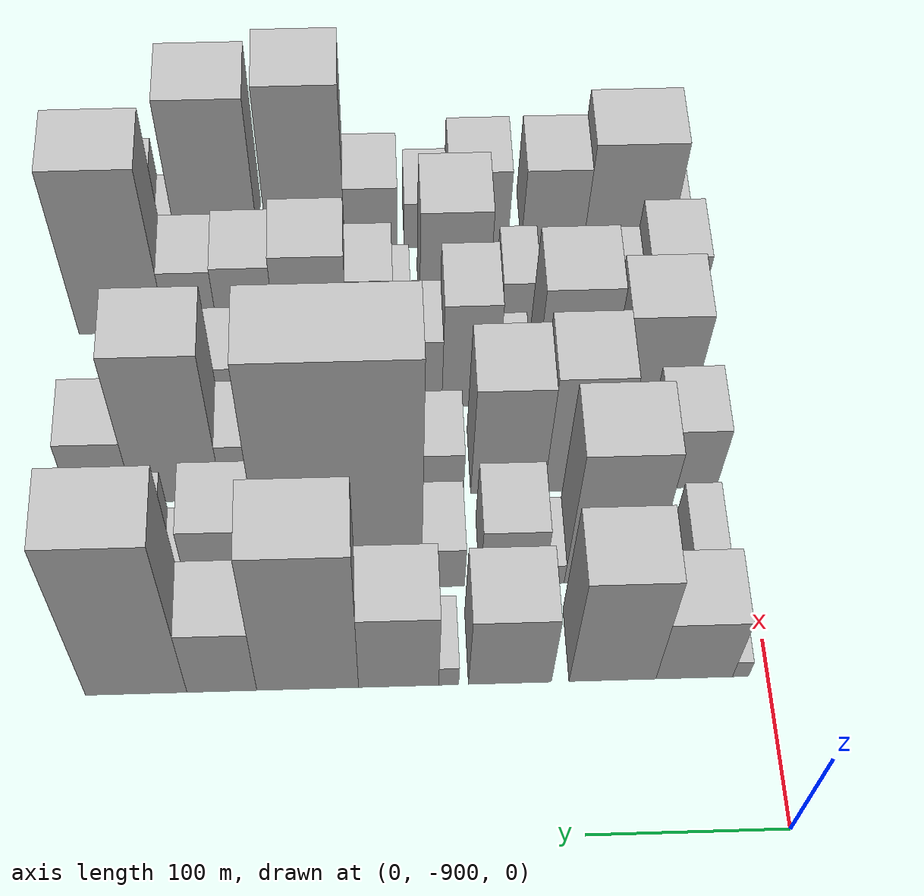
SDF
<sdf version="1.6">
 <world name="default">
  <model name="building_1">
   <static>1</static>
   <pose>100.0000 -885.8886 0 0.000000 0.000000 0.000000</pose>
   <link name="link">
    <pose>0 0 9.00 0 0 0</pose>
    <collision name="collision"><geometry><box><size>40.0000 8.2228 18.0000</size></box></geometry></collision>
    <visual name="visual">
     <cast_shadows>0</cast_shadows>
     <geometry><box><size>40.0000 8.2228 18.0000</size></box></geometry>
     <material>
      <script>
       <uri>model://HANNAS_wall/materials/scripts</uri>
       <uri>model://HANNAS_wall/materials/textures</uri>
       <name>vrc/HANNAS_wall</name>
      </script>
     </material>
    </visual>
   </link>
  </model>
  <model name="building_2">
   <static>1</static>
   <pose>100.0000 -862.1573 0 0.000000 0.000000 0.000000</pose>
   <link name="link">
    <pose>0 0 33.00 0 0 0</pose>
    <collision name="collision"><geometry><box><size>40.0000 39.2398 66.0000</size></box></geometry></collision>
    <visual name="visual">
     <cast_shadows>0</cast_shadows>
     <geometry><box><size>40.0000 39.2398 66.0000</size></box></geometry>
     <material>
      <script>
       <uri>model://HANNAS_wall/materials/scripts</uri>
       <uri>model://HANNAS_wall/materials/textures</uri>
       <name>vrc/HANNAS_wall</name>
      </script>
     </material>
    </visual>
   </link>
  </model>
  <model name="building_3">
   <static>1</static>
   <pose>100.0000 -820.3483 0 0.000000 0.000000 0.000000</pose>
   <link name="link">
    <pose>0 0 57.00 0 0 0</pose>
    <collision name="collision"><geometry><box><size>40.0000 44.3781 114.0000</size></box></geometry></collision>
    <visual name="visual">
     <cast_shadows>0</cast_shadows>
     <geometry><box><size>40.0000 44.3781 114.0000</size></box></geometry>
     <material>
      <script>
       <uri>model://HANNAS_wall/materials/scripts</uri>
       <uri>model://HANNAS_wall/materials/textures</uri>
       <name>vrc/HANNAS_wall</name>
      </script>
     </material>
    </visual>
   </link>
  </model>
  <model name="building_4">
   <static>1</static>
   <pose>100.0000 -768.0062 0 0.000000 0.000000 0.000000</pose>
   <link name="link">
    <pose>0 0 37.50 0 0 0</pose>
    <collision name="collision"><geometry><box><size>40.0000 42.3063 75.0000</size></box></geometry></collision>
    <visual name="visual">
     <cast_shadows>0</cast_shadows>
     <geometry><box><size>40.0000 42.3063 75.0000</size></box></geometry>
     <material>
      <script>
       <uri>model://HANNAS_wall/materials/scripts</uri>
       <uri>model://HANNAS_wall/materials/textures</uri>
       <name>vrc/HANNAS_wall</name>
      </script>
     </material>
    </visual>
   </link>
  </model>
  <model name="building_5">
   <static>1</static>
   <pose>100.0000 -736.7441 0 0.000000 0.000000 0.000000</pose>
   <link name="link">
    <pose>0 0 10.50 0 0 0</pose>
    <collision name="collision"><geometry><box><size>40.0000 10.2178 21.0000</size></box></geometry></collision>
    <visual name="visual">
     <cast_shadows>0</cast_shadows>
     <geometry><box><size>40.0000 10.2178 21.0000</size></box></geometry>
     <material>
      <script>
       <uri>model://HANNAS_wall/materials/scripts</uri>
       <uri>model://HANNAS_wall/materials/textures</uri>
       <name>vrc/HANNAS_wall</name>
      </script>
     </material>
    </visual>
   </link>
  </model>
  <model name="building_6">
   <static>1</static>
   <pose>100.0000 -711.2774 0 0.000000 0.000000 0.000000</pose>
   <link name="link">
    <pose>0 0 40.50 0 0 0</pose>
    <collision name="collision"><geometry><box><size>40.0000 40.7158 81.0000</size></box></geometry></collision>
    <visual name="visual">
     <cast_shadows>0</cast_shadows>
     <geometry><box><size>40.0000 40.7158 81.0000</size></box></geometry>
     <material>
      <script>
       <uri>model://HANNAS_wall/materials/scripts</uri>
       <uri>model://HANNAS_wall/materials/textures</uri>
       <name>vrc/HANNAS_wall</name>
      </script>
     </material>
    </visual>
   </link>
  </model>
  <model name="building_7">
   <static>1</static>
   <pose>100.0000 -665.0568 0 0.000000 0.000000 0.000000</pose>
   <link name="link">
    <pose>0 0 75.00 0 0 0</pose>
    <collision name="collision"><geometry><box><size>40.0000 51.7253 150.0000</size></box></geometry></collision>
    <visual name="visual">
     <cast_shadows>0</cast_shadows>
     <geometry><box><size>40.0000 51.7253 150.0000</size></box></geometry>
     <material>
      <script>
       <uri>model://HANNAS_wall/materials/scripts</uri>
       <uri>model://HANNAS_wall/materials/textures</uri>
       <name>vrc/HANNAS_wall</name>
      </script>
     </material>
    </visual>
   </link>
  </model>
  <model name="building_8">
   <static>1</static>
   <pose>100.0000 -621.4893 0 0.000000 0.000000 0.000000</pose>
   <link name="link">
    <pose>0 0 34.50 0 0 0</pose>
    <collision name="collision"><geometry><box><size>40.0000 35.4097 69.0000</size></box></geometry></collision>
    <visual name="visual">
     <cast_shadows>0</cast_shadows>
     <geometry><box><size>40.0000 35.4097 69.0000</size></box></geometry>
     <material>
      <script>
       <uri>model://HANNAS_wall/materials/scripts</uri>
       <uri>model://HANNAS_wall/materials/textures</uri>
       <name>vrc/HANNAS_wall</name>
      </script>
     </material>
    </visual>
   </link>
  </model>
  <model name="building_9">
   <static>1</static>
   <pose>100.0000 -578.0950 0 0.000000 0.000000 0.000000</pose>
   <link name="link">
    <pose>0 0 82.50 0 0 0</pose>
    <collision name="collision"><geometry><box><size>40.0000 51.3789 165.0000</size></box></geometry></collision>
    <visual name="visual">
     <cast_shadows>0</cast_shadows>
     <geometry><box><size>40.0000 51.3789 165.0000</size></box></geometry>
     <material>
      <script>
       <uri>model://HANNAS_wall/materials/scripts</uri>
       <uri>model://HANNAS_wall/materials/textures</uri>
       <name>vrc/HANNAS_wall</name>
      </script>
     </material>
    </visual>
   </link>
  </model>
  <model name="building_50">
   <static>1</static>
   <pose>155.0000 -873.4948 0 0.000000 0.000000 0.000000</pose>
   <link name="link">
    <pose>0 0 16.50 0 0 0</pose>
    <collision name="collision"><geometry><box><size>40.0000 19.0104 33.0000</size></box></geometry></collision>
    <visual name="visual">
     <cast_shadows>0</cast_shadows>
     <geometry><box><size>40.0000 19.0104 33.0000</size></box></geometry>
     <material>
      <script>
       <uri>model://HANNAS_wall/materials/scripts</uri>
       <uri>model://HANNAS_wall/materials/textures</uri>
       <name>vrc/HANNAS_wall</name>
      </script>
     </material>
    </visual>
   </link>
  </model>
  <model name="building_51">
   <static>1</static>
   <pose>155.0000 -855.7284 0 0.000000 0.000000 0.000000</pose>
   <link name="link">
    <pose>0 0 7.50 0 0 0</pose>
    <collision name="collision"><geometry><box><size>40.0000 6.5225 15.0000</size></box></geometry></collision>
    <visual name="visual">
     <cast_shadows>0</cast_shadows>
     <geometry><box><size>40.0000 6.5225 15.0000</size></box></geometry>
     <material>
      <script>
       <uri>model://HANNAS_wall/materials/scripts</uri>
       <uri>model://HANNAS_wall/materials/textures</uri>
       <name>vrc/HANNAS_wall</name>
      </script>
     </material>
    </visual>
   </link>
  </model>
  <model name="building_52">
   <static>1</static>
   <pose>155.0000 -822.6581 0 0.000000 0.000000 0.000000</pose>
   <link name="link">
    <pose>0 0 67.50 0 0 0</pose>
    <collision name="collision"><geometry><box><size>40.0000 45.6182 135.0000</size></box></geometry></collision>
    <visual name="visual">
     <cast_shadows>0</cast_shadows>
     <geometry><box><size>40.0000 45.6182 135.0000</size></box></geometry>
     <material>
      <script>
       <uri>model://HANNAS_wall/materials/scripts</uri>
       <uri>model://HANNAS_wall/materials/textures</uri>
       <name>vrc/HANNAS_wall</name>
      </script>
     </material>
    </visual>
   </link>
  </model>
  <model name="building_53">
   <static>1</static>
   <pose>155.0000 -794.6449 0 0.000000 0.000000 0.000000</pose>
   <link name="link">
    <pose>0 0 10.50 0 0 0</pose>
    <collision name="collision"><geometry><box><size>40.0000 10.4082 21.0000</size></box></geometry></collision>
    <visual name="visual">
     <cast_shadows>0</cast_shadows>
     <geometry><box><size>40.0000 10.4082 21.0000</size></box></geometry>
     <material>
      <script>
       <uri>model://HANNAS_wall/materials/scripts</uri>
       <uri>model://HANNAS_wall/materials/textures</uri>
       <name>vrc/HANNAS_wall</name>
      </script>
     </material>
    </visual>
   </link>
  </model>
  <model name="building_54">
   <static>1</static>
   <pose>155.0000 -772.4539 0 0.000000 0.000000 0.000000</pose>
   <link name="link">
    <pose>0 0 30.00 0 0 0</pose>
    <collision name="collision"><geometry><box><size>40.0000 33.9737 60.0000</size></box></geometry></collision>
    <visual name="visual">
     <cast_shadows>0</cast_shadows>
     <geometry><box><size>40.0000 33.9737 60.0000</size></box></geometry>
     <material>
      <script>
       <uri>model://HANNAS_wall/materials/scripts</uri>
       <uri>model://HANNAS_wall/materials/textures</uri>
       <name>vrc/HANNAS_wall</name>
      </script>
     </material>
    </visual>
   </link>
  </model>
  <model name="building_55">
   <static>1</static>
   <pose>155.0000 -736.1409 0 0.000000 0.000000 0.000000</pose>
   <link name="link">
    <pose>0 0 21.00 0 0 0</pose>
    <collision name="collision"><geometry><box><size>40.0000 22.6525 42.0000</size></box></geometry></collision>
    <visual name="visual">
     <cast_shadows>0</cast_shadows>
     <geometry><box><size>40.0000 22.6525 42.0000</size></box></geometry>
     <material>
      <script>
       <uri>model://HANNAS_wall/materials/scripts</uri>
       <uri>model://HANNAS_wall/materials/textures</uri>
       <name>vrc/HANNAS_wall</name>
      </script>
     </material>
    </visual>
   </link>
  </model>
  <model name="building_56">
   <static>1</static>
   <pose>155.0000 -683.8032 0 0.000000 0.000000 0.000000</pose>
   <link name="link">
    <pose>0 0 111.00 0 0 0</pose>
    <collision name="collision"><geometry><box><size>40.0000 82.0228 222.0000</size></box></geometry></collision>
    <visual name="visual">
     <cast_shadows>0</cast_shadows>
     <geometry><box><size>40.0000 82.0228 222.0000</size></box></geometry>
     <material>
      <script>
       <uri>model://HANNAS_wall/materials/scripts</uri>
       <uri>model://HANNAS_wall/materials/textures</uri>
       <name>vrc/HANNAS_wall</name>
      </script>
     </material>
    </visual>
   </link>
  </model>
  <model name="building_57">
   <static>1</static>
   <pose>155.0000 -622.7262 0 0.000000 0.000000 0.000000</pose>
   <link name="link">
    <pose>0 0 34.50 0 0 0</pose>
    <collision name="collision"><geometry><box><size>40.0000 40.1311 69.0000</size></box></geometry></collision>
    <visual name="visual">
     <cast_shadows>0</cast_shadows>
     <geometry><box><size>40.0000 40.1311 69.0000</size></box></geometry>
     <material>
      <script>
       <uri>model://HANNAS_wall/materials/scripts</uri>
       <uri>model://HANNAS_wall/materials/textures</uri>
       <name>vrc/HANNAS_wall</name>
      </script>
     </material>
    </visual>
   </link>
  </model>
  <model name="building_58">
   <static>1</static>
   <pose>155.0000 -597.5790 0 0.000000 0.000000 0.000000</pose>
   <link name="link">
    <pose>0 0 10.50 0 0 0</pose>
    <collision name="collision"><geometry><box><size>40.0000 10.1633 21.0000</size></box></geometry></collision>
    <visual name="visual">
     <cast_shadows>0</cast_shadows>
     <geometry><box><size>40.0000 10.1633 21.0000</size></box></geometry>
     <material>
      <script>
       <uri>model://HANNAS_wall/materials/scripts</uri>
       <uri>model://HANNAS_wall/materials/textures</uri>
       <name>vrc/HANNAS_wall</name>
      </script>
     </material>
    </visual>
   </link>
  </model>
  <model name="building_59">
   <static>1</static>
   <pose>155.0000 -576.0918 0 0.000000 0.000000 0.000000</pose>
   <link name="link">
    <pose>0 0 30.00 0 0 0</pose>
    <collision name="collision"><geometry><box><size>40.0000 32.8111 60.0000</size></box></geometry></collision>
    <visual name="visual">
     <cast_shadows>0</cast_shadows>
     <geometry><box><size>40.0000 32.8111 60.0000</size></box></geometry>
     <material>
      <script>
       <uri>model://HANNAS_wall/materials/scripts</uri>
       <uri>model://HANNAS_wall/materials/textures</uri>
       <name>vrc/HANNAS_wall</name>
      </script>
     </material>
    </visual>
   </link>
  </model>
  <model name="building_100">
   <static>1</static>
   <pose>210.0000 -870.8653 0 0.000000 0.000000 0.000000</pose>
   <link name="link">
    <pose>0 0 30.00 0 0 0</pose>
    <collision name="collision"><geometry><box><size>40.0000 32.2693 60.0000</size></box></geometry></collision>
    <visual name="visual">
     <cast_shadows>0</cast_shadows>
     <geometry><box><size>40.0000 32.2693 60.0000</size></box></geometry>
     <material>
      <script>
       <uri>model://HANNAS_wall/materials/scripts</uri>
       <uri>model://HANNAS_wall/materials/textures</uri>
       <name>vrc/HANNAS_wall</name>
      </script>
     </material>
    </visual>
   </link>
  </model>
  <model name="building_101">
   <static>1</static>
   <pose>210.0000 -849.5420 0 0.000000 0.000000 0.000000</pose>
   <link name="link">
    <pose>0 0 10.50 0 0 0</pose>
    <collision name="collision"><geometry><box><size>40.0000 10.3774 21.0000</size></box></geometry></collision>
    <visual name="visual">
     <cast_shadows>0</cast_shadows>
     <geometry><box><size>40.0000 10.3774 21.0000</size></box></geometry>
     <material>
      <script>
       <uri>model://HANNAS_wall/materials/scripts</uri>
       <uri>model://HANNAS_wall/materials/textures</uri>
       <name>vrc/HANNAS_wall</name>
      </script>
     </material>
    </visual>
   </link>
  </model>
  <model name="building_102">
   <static>1</static>
   <pose>210.0000 -838.5446 0 0.000000 0.000000 0.000000</pose>
   <link name="link">
    <pose>0 0 13.50 0 0 0</pose>
    <collision name="collision"><geometry><box><size>40.0000 11.6174 27.0000</size></box></geometry></collision>
    <visual name="visual">
     <cast_shadows>0</cast_shadows>
     <geometry><box><size>40.0000 11.6174 27.0000</size></box></geometry>
     <material>
      <script>
       <uri>model://HANNAS_wall/materials/scripts</uri>
       <uri>model://HANNAS_wall/materials/textures</uri>
       <name>vrc/HANNAS_wall</name>
      </script>
     </material>
    </visual>
   </link>
  </model>
  <model name="building_103">
   <static>1</static>
   <pose>210.0000 -812.9775 0 0.000000 0.000000 0.000000</pose>
   <link name="link">
    <pose>0 0 57.00 0 0 0</pose>
    <collision name="collision"><geometry><box><size>40.0000 39.5167 114.0000</size></box></geometry></collision>
    <visual name="visual">
     <cast_shadows>0</cast_shadows>
     <geometry><box><size>40.0000 39.5167 114.0000</size></box></geometry>
     <material>
      <script>
       <uri>model://HANNAS_wall/materials/scripts</uri>
       <uri>model://HANNAS_wall/materials/textures</uri>
       <name>vrc/HANNAS_wall</name>
      </script>
     </material>
    </visual>
   </link>
  </model>
  <model name="building_104">
   <static>1</static>
   <pose>210.0000 -773.3384 0 0.000000 0.000000 0.000000</pose>
   <link name="link">
    <pose>0 0 52.50 0 0 0</pose>
    <collision name="collision"><geometry><box><size>40.0000 39.7615 105.0000</size></box></geometry></collision>
    <visual name="visual">
     <cast_shadows>0</cast_shadows>
     <geometry><box><size>40.0000 39.7615 105.0000</size></box></geometry>
     <material>
      <script>
       <uri>model://HANNAS_wall/materials/scripts</uri>
       <uri>model://HANNAS_wall/materials/textures</uri>
       <name>vrc/HANNAS_wall</name>
      </script>
     </material>
    </visual>
   </link>
  </model>
  <model name="building_105">
   <static>1</static>
   <pose>210.0000 -736.8849 0 0.000000 0.000000 0.000000</pose>
   <link name="link">
    <pose>0 0 21.00 0 0 0</pose>
    <collision name="collision"><geometry><box><size>40.0000 25.1454 42.0000</size></box></geometry></collision>
    <visual name="visual">
     <cast_shadows>0</cast_shadows>
     <geometry><box><size>40.0000 25.1454 42.0000</size></box></geometry>
     <material>
      <script>
       <uri>model://HANNAS_wall/materials/scripts</uri>
       <uri>model://HANNAS_wall/materials/textures</uri>
       <name>vrc/HANNAS_wall</name>
      </script>
     </material>
    </visual>
   </link>
  </model>
  <model name="building_106">
   <static>1</static>
   <pose>210.0000 -702.8919 0 0.000000 0.000000 0.000000</pose>
   <link name="link">
    <pose>0 0 34.50 0 0 0</pose>
    <collision name="collision"><geometry><box><size>40.0000 34.8406 69.0000</size></box></geometry></collision>
    <visual name="visual">
     <cast_shadows>0</cast_shadows>
     <geometry><box><size>40.0000 34.8406 69.0000</size></box></geometry>
     <material>
      <script>
       <uri>model://HANNAS_wall/materials/scripts</uri>
       <uri>model://HANNAS_wall/materials/textures</uri>
       <name>vrc/HANNAS_wall</name>
      </script>
     </material>
    </visual>
   </link>
  </model>
  <model name="building_107">
   <static>1</static>
   <pose>210.0000 -666.8787 0 0.000000 0.000000 0.000000</pose>
   <link name="link">
    <pose>0 0 60.00 0 0 0</pose>
    <collision name="collision"><geometry><box><size>40.0000 37.1859 120.0000</size></box></geometry></collision>
    <visual name="visual">
     <cast_shadows>0</cast_shadows>
     <geometry><box><size>40.0000 37.1859 120.0000</size></box></geometry>
     <material>
      <script>
       <uri>model://HANNAS_wall/materials/scripts</uri>
       <uri>model://HANNAS_wall/materials/textures</uri>
       <name>vrc/HANNAS_wall</name>
      </script>
     </material>
    </visual>
   </link>
  </model>
  <model name="building_108">
   <static>1</static>
   <pose>210.0000 -633.8400 0 0.000000 0.000000 0.000000</pose>
   <link name="link">
    <pose>0 0 28.50 0 0 0</pose>
    <collision name="collision"><geometry><box><size>40.0000 28.8915 57.0000</size></box></geometry></collision>
    <visual name="visual">
     <cast_shadows>0</cast_shadows>
     <geometry><box><size>40.0000 28.8915 57.0000</size></box></geometry>
     <material>
      <script>
       <uri>model://HANNAS_wall/materials/scripts</uri>
       <uri>model://HANNAS_wall/materials/textures</uri>
       <name>vrc/HANNAS_wall</name>
      </script>
     </material>
    </visual>
   </link>
  </model>
  <model name="building_109">
   <static>1</static>
   <pose>210.0000 -595.5925 0 0.000000 0.000000 0.000000</pose>
   <link name="link">
    <pose>0 0 72.00 0 0 0</pose>
    <collision name="collision"><geometry><box><size>40.0000 47.6035 144.0000</size></box></geometry></collision>
    <visual name="visual">
     <cast_shadows>0</cast_shadows>
     <geometry><box><size>40.0000 47.6035 144.0000</size></box></geometry>
     <material>
      <script>
       <uri>model://HANNAS_wall/materials/scripts</uri>
       <uri>model://HANNAS_wall/materials/textures</uri>
       <name>vrc/HANNAS_wall</name>
      </script>
     </material>
    </visual>
   </link>
  </model>
  <model name="building_110">
   <static>1</static>
   <pose>210.0000 -554.6312 0 0.000000 0.000000 0.000000</pose>
   <link name="link">
    <pose>0 0 31.50 0 0 0</pose>
    <collision name="collision"><geometry><box><size>40.0000 34.3191 63.0000</size></box></geometry></collision>
    <visual name="visual">
     <cast_shadows>0</cast_shadows>
     <geometry><box><size>40.0000 34.3191 63.0000</size></box></geometry>
     <material>
      <script>
       <uri>model://HANNAS_wall/materials/scripts</uri>
       <uri>model://HANNAS_wall/materials/textures</uri>
       <name>vrc/HANNAS_wall</name>
      </script>
     </material>
    </visual>
   </link>
  </model>
  <model name="building_153">
   <static>1</static>
   <pose>265.0000 -859.5274 0 0.000000 0.000000 0.000000</pose>
   <link name="link">
    <pose>0 0 42.00 0 0 0</pose>
    <collision name="collision"><geometry><box><size>40.0000 42.9451 84.0000</size></box></geometry></collision>
    <visual name="visual">
     <cast_shadows>0</cast_shadows>
     <geometry><box><size>40.0000 42.9451 84.0000</size></box></geometry>
     <material>
      <script>
       <uri>model://HANNAS_wall/materials/scripts</uri>
       <uri>model://HANNAS_wall/materials/textures</uri>
       <name>vrc/HANNAS_wall</name>
      </script>
     </material>
    </visual>
   </link>
  </model>
  <model name="building_154">
   <static>1</static>
   <pose>265.0000 -811.6871 0 0.000000 0.000000 0.000000</pose>
   <link name="link">
    <pose>0 0 55.50 0 0 0</pose>
    <collision name="collision"><geometry><box><size>40.0000 40.7357 111.0000</size></box></geometry></collision>
    <visual name="visual">
     <cast_shadows>0</cast_shadows>
     <geometry><box><size>40.0000 40.7357 111.0000</size></box></geometry>
     <material>
      <script>
       <uri>model://HANNAS_wall/materials/scripts</uri>
       <uri>model://HANNAS_wall/materials/textures</uri>
       <name>vrc/HANNAS_wall</name>
      </script>
     </material>
    </visual>
   </link>
  </model>
  <model name="building_155">
   <static>1</static>
   <pose>265.0000 -779.3208 0 0.000000 0.000000 0.000000</pose>
   <link name="link">
    <pose>0 0 16.50 0 0 0</pose>
    <collision name="collision"><geometry><box><size>40.0000 17.9968 33.0000</size></box></geometry></collision>
    <visual name="visual">
     <cast_shadows>0</cast_shadows>
     <geometry><box><size>40.0000 17.9968 33.0000</size></box></geometry>
     <material>
      <script>
       <uri>model://HANNAS_wall/materials/scripts</uri>
       <uri>model://HANNAS_wall/materials/textures</uri>
       <name>vrc/HANNAS_wall</name>
      </script>
     </material>
    </visual>
   </link>
  </model>
  <model name="building_156">
   <static>1</static>
   <pose>265.0000 -755.1540 0 0.000000 0.000000 0.000000</pose>
   <link name="link">
    <pose>0 0 49.50 0 0 0</pose>
    <collision name="collision"><geometry><box><size>40.0000 30.3367 99.0000</size></box></geometry></collision>
    <visual name="visual">
     <cast_shadows>0</cast_shadows>
     <geometry><box><size>40.0000 30.3367 99.0000</size></box></geometry>
     <material>
      <script>
       <uri>model://HANNAS_wall/materials/scripts</uri>
       <uri>model://HANNAS_wall/materials/textures</uri>
       <name>vrc/HANNAS_wall</name>
      </script>
     </material>
    </visual>
   </link>
  </model>
  <model name="building_157">
   <static>1</static>
   <pose>265.0000 -723.2422 0 0.000000 0.000000 0.000000</pose>
   <link name="link">
    <pose>0 0 33.00 0 0 0</pose>
    <collision name="collision"><geometry><box><size>40.0000 33.4870 66.0000</size></box></geometry></collision>
    <visual name="visual">
     <cast_shadows>0</cast_shadows>
     <geometry><box><size>40.0000 33.4870 66.0000</size></box></geometry>
     <material>
      <script>
       <uri>model://HANNAS_wall/materials/scripts</uri>
       <uri>model://HANNAS_wall/materials/textures</uri>
       <name>vrc/HANNAS_wall</name>
      </script>
     </material>
    </visual>
   </link>
  </model>
  <model name="building_158">
   <static>1</static>
   <pose>265.0000 -690.0148 0 0.000000 0.000000 0.000000</pose>
   <link name="link">
    <pose>0 0 28.50 0 0 0</pose>
    <collision name="collision"><geometry><box><size>40.0000 32.9679 57.0000</size></box></geometry></collision>
    <visual name="visual">
     <cast_shadows>0</cast_shadows>
     <geometry><box><size>40.0000 32.9679 57.0000</size></box></geometry>
     <material>
      <script>
       <uri>model://HANNAS_wall/materials/scripts</uri>
       <uri>model://HANNAS_wall/materials/textures</uri>
       <name>vrc/HANNAS_wall</name>
      </script>
     </material>
    </visual>
   </link>
  </model>
  <model name="building_159">
   <static>1</static>
   <pose>265.0000 -656.4279 0 0.000000 0.000000 0.000000</pose>
   <link name="link">
    <pose>0 0 31.50 0 0 0</pose>
    <collision name="collision"><geometry><box><size>40.0000 34.2059 63.0000</size></box></geometry></collision>
    <visual name="visual">
     <cast_shadows>0</cast_shadows>
     <geometry><box><size>40.0000 34.2059 63.0000</size></box></geometry>
     <material>
      <script>
       <uri>model://HANNAS_wall/materials/scripts</uri>
       <uri>model://HANNAS_wall/materials/textures</uri>
       <name>vrc/HANNAS_wall</name>
      </script>
     </material>
    </visual>
   </link>
  </model>
  <model name="building_160">
   <static>1</static>
   <pose>265.0000 -620.8865 0 0.000000 0.000000 0.000000</pose>
   <link name="link">
    <pose>0 0 22.50 0 0 0</pose>
    <collision name="collision"><geometry><box><size>40.0000 22.8769 45.0000</size></box></geometry></collision>
    <visual name="visual">
     <cast_shadows>0</cast_shadows>
     <geometry><box><size>40.0000 22.8769 45.0000</size></box></geometry>
     <material>
      <script>
       <uri>model://HANNAS_wall/materials/scripts</uri>
       <uri>model://HANNAS_wall/materials/textures</uri>
       <name>vrc/HANNAS_wall</name>
      </script>
     </material>
    </visual>
   </link>
  </model>
  <model name="building_161">
   <static>1</static>
   <pose>265.0000 -604.0012 0 0.000000 0.000000 0.000000</pose>
   <link name="link">
    <pose>0 0 12.00 0 0 0</pose>
    <collision name="collision"><geometry><box><size>40.0000 10.8937 24.0000</size></box></geometry></collision>
    <visual name="visual">
     <cast_shadows>0</cast_shadows>
     <geometry><box><size>40.0000 10.8937 24.0000</size></box></geometry>
     <material>
      <script>
       <uri>model://HANNAS_wall/materials/scripts</uri>
       <uri>model://HANNAS_wall/materials/textures</uri>
       <name>vrc/HANNAS_wall</name>
      </script>
     </material>
    </visual>
   </link>
  </model>
  <model name="building_162">
   <static>1</static>
   <pose>265.0000 -584.0041 0 0.000000 0.000000 0.000000</pose>
   <link name="link">
    <pose>0 0 28.50 0 0 0</pose>
    <collision name="collision"><geometry><box><size>40.0000 29.1004 57.0000</size></box></geometry></collision>
    <visual name="visual">
     <cast_shadows>0</cast_shadows>
     <geometry><box><size>40.0000 29.1004 57.0000</size></box></geometry>
     <material>
      <script>
       <uri>model://HANNAS_wall/materials/scripts</uri>
       <uri>model://HANNAS_wall/materials/textures</uri>
       <name>vrc/HANNAS_wall</name>
      </script>
     </material>
    </visual>
   </link>
  </model>
  <model name="building_205">
   <static>1</static>
   <pose>320.0000 -873.0602 0 0.000000 0.000000 0.000000</pose>
   <link name="link">
    <pose>0 0 30.00 0 0 0</pose>
    <collision name="collision"><geometry><box><size>40.0000 33.8796 60.0000</size></box></geometry></collision>
    <visual name="visual">
     <cast_shadows>0</cast_shadows>
     <geometry><box><size>40.0000 33.8796 60.0000</size></box></geometry>
     <material>
      <script>
       <uri>model://HANNAS_wall/materials/scripts</uri>
       <uri>model://HANNAS_wall/materials/textures</uri>
       <name>vrc/HANNAS_wall</name>
      </script>
     </material>
    </visual>
   </link>
  </model>
  <model name="building_206">
   <static>1</static>
   <pose>320.0000 -846.9853 0 0.000000 0.000000 0.000000</pose>
   <link name="link">
    <pose>0 0 18.00 0 0 0</pose>
    <collision name="collision"><geometry><box><size>40.0000 18.2702 36.0000</size></box></geometry></collision>
    <visual name="visual">
     <cast_shadows>0</cast_shadows>
     <geometry><box><size>40.0000 18.2702 36.0000</size></box></geometry>
     <material>
      <script>
       <uri>model://HANNAS_wall/materials/scripts</uri>
       <uri>model://HANNAS_wall/materials/textures</uri>
       <name>vrc/HANNAS_wall</name>
      </script>
     </material>
    </visual>
   </link>
  </model>
  <model name="building_207">
   <static>1</static>
   <pose>320.0000 -825.9093 0 0.000000 0.000000 0.000000</pose>
   <link name="link">
    <pose>0 0 15.00 0 0 0</pose>
    <collision name="collision"><geometry><box><size>40.0000 17.8818 30.0000</size></box></geometry></collision>
    <visual name="visual">
     <cast_shadows>0</cast_shadows>
     <geometry><box><size>40.0000 17.8818 30.0000</size></box></geometry>
     <material>
      <script>
       <uri>model://HANNAS_wall/materials/scripts</uri>
       <uri>model://HANNAS_wall/materials/textures</uri>
       <name>vrc/HANNAS_wall</name>
      </script>
     </material>
    </visual>
   </link>
  </model>
  <model name="building_208">
   <static>1</static>
   <pose>320.0000 -811.1371 0 0.000000 0.000000 0.000000</pose>
   <link name="link">
    <pose>0 0 12.00 0 0 0</pose>
    <collision name="collision"><geometry><box><size>40.0000 11.6626 24.0000</size></box></geometry></collision>
    <visual name="visual">
     <cast_shadows>0</cast_shadows>
     <geometry><box><size>40.0000 11.6626 24.0000</size></box></geometry>
     <material>
      <script>
       <uri>model://HANNAS_wall/materials/scripts</uri>
       <uri>model://HANNAS_wall/materials/textures</uri>
       <name>vrc/HANNAS_wall</name>
      </script>
     </material>
    </visual>
   </link>
  </model>
  <model name="building_209">
   <static>1</static>
   <pose>320.0000 -786.8536 0 0.000000 0.000000 0.000000</pose>
   <link name="link">
    <pose>0 0 19.50 0 0 0</pose>
    <collision name="collision"><geometry><box><size>40.0000 20.9046 39.0000</size></box></geometry></collision>
    <visual name="visual">
     <cast_shadows>0</cast_shadows>
     <geometry><box><size>40.0000 20.9046 39.0000</size></box></geometry>
     <material>
      <script>
       <uri>model://HANNAS_wall/materials/scripts</uri>
       <uri>model://HANNAS_wall/materials/textures</uri>
       <name>vrc/HANNAS_wall</name>
      </script>
     </material>
    </visual>
   </link>
  </model>
  <model name="building_210">
   <static>1</static>
   <pose>320.0000 -748.9636 0 0.000000 0.000000 0.000000</pose>
   <link name="link">
    <pose>0 0 52.50 0 0 0</pose>
    <collision name="collision"><geometry><box><size>40.0000 38.8753 105.0000</size></box></geometry></collision>
    <visual name="visual">
     <cast_shadows>0</cast_shadows>
     <geometry><box><size>40.0000 38.8753 105.0000</size></box></geometry>
     <material>
      <script>
       <uri>model://HANNAS_wall/materials/scripts</uri>
       <uri>model://HANNAS_wall/materials/textures</uri>
       <name>vrc/HANNAS_wall</name>
      </script>
     </material>
    </visual>
   </link>
  </model>
  <model name="building_211">
   <static>1</static>
   <pose>320.0000 -719.4707 0 0.000000 0.000000 0.000000</pose>
   <link name="link">
    <pose>0 0 12.00 0 0 0</pose>
    <collision name="collision"><geometry><box><size>40.0000 10.1104 24.0000</size></box></geometry></collision>
    <visual name="visual">
     <cast_shadows>0</cast_shadows>
     <geometry><box><size>40.0000 10.1104 24.0000</size></box></geometry>
     <material>
      <script>
       <uri>model://HANNAS_wall/materials/scripts</uri>
       <uri>model://HANNAS_wall/materials/textures</uri>
       <name>vrc/HANNAS_wall</name>
      </script>
     </material>
    </visual>
   </link>
  </model>
  <model name="building_212">
   <static>1</static>
   <pose>320.0000 -701.0770 0 0.000000 0.000000 0.000000</pose>
   <link name="link">
    <pose>0 0 22.50 0 0 0</pose>
    <collision name="collision"><geometry><box><size>40.0000 26.6770 45.0000</size></box></geometry></collision>
    <visual name="visual">
     <cast_shadows>0</cast_shadows>
     <geometry><box><size>40.0000 26.6770 45.0000</size></box></geometry>
     <material>
      <script>
       <uri>model://HANNAS_wall/materials/scripts</uri>
       <uri>model://HANNAS_wall/materials/textures</uri>
       <name>vrc/HANNAS_wall</name>
      </script>
     </material>
    </visual>
   </link>
  </model>
  <model name="building_213">
   <static>1</static>
   <pose>320.0000 -667.0675 0 0.000000 0.000000 0.000000</pose>
   <link name="link">
    <pose>0 0 34.50 0 0 0</pose>
    <collision name="collision"><geometry><box><size>40.0000 41.3421 69.0000</size></box></geometry></collision>
    <visual name="visual">
     <cast_shadows>0</cast_shadows>
     <geometry><box><size>40.0000 41.3421 69.0000</size></box></geometry>
     <material>
      <script>
       <uri>model://HANNAS_wall/materials/scripts</uri>
       <uri>model://HANNAS_wall/materials/textures</uri>
       <name>vrc/HANNAS_wall</name>
      </script>
     </material>
    </visual>
   </link>
  </model>
  <model name="building_214">
   <static>1</static>
   <pose>320.0000 -630.2167 0 0.000000 0.000000 0.000000</pose>
   <link name="link">
    <pose>0 0 30.00 0 0 0</pose>
    <collision name="collision"><geometry><box><size>40.0000 32.3595 60.0000</size></box></geometry></collision>
    <visual name="visual">
     <cast_shadows>0</cast_shadows>
     <geometry><box><size>40.0000 32.3595 60.0000</size></box></geometry>
     <material>
      <script>
       <uri>model://HANNAS_wall/materials/scripts</uri>
       <uri>model://HANNAS_wall/materials/textures</uri>
       <name>vrc/HANNAS_wall</name>
      </script>
     </material>
    </visual>
   </link>
  </model>
  <model name="building_215">
   <static>1</static>
   <pose>320.0000 -599.3922 0 0.000000 0.000000 0.000000</pose>
   <link name="link">
    <pose>0 0 28.50 0 0 0</pose>
    <collision name="collision"><geometry><box><size>40.0000 29.2895 57.0000</size></box></geometry></collision>
    <visual name="visual">
     <cast_shadows>0</cast_shadows>
     <geometry><box><size>40.0000 29.2895 57.0000</size></box></geometry>
     <material>
      <script>
       <uri>model://HANNAS_wall/materials/scripts</uri>
       <uri>model://HANNAS_wall/materials/textures</uri>
       <name>vrc/HANNAS_wall</name>
      </script>
     </material>
    </visual>
   </link>
  </model>
  <model name="building_216">
   <static>1</static>
   <pose>320.0000 -559.7850 0 0.000000 0.000000 0.000000</pose>
   <link name="link">
    <pose>0 0 73.50 0 0 0</pose>
    <collision name="collision"><geometry><box><size>40.0000 49.9249 147.0000</size></box></geometry></collision>
    <visual name="visual">
     <cast_shadows>0</cast_shadows>
     <geometry><box><size>40.0000 49.9249 147.0000</size></box></geometry>
     <material>
      <script>
       <uri>model://HANNAS_wall/materials/scripts</uri>
       <uri>model://HANNAS_wall/materials/textures</uri>
       <name>vrc/HANNAS_wall</name>
      </script>
     </material>
    </visual>
   </link>
  </model>
  <model name="building_255">
   <static>1</static>
   <pose>375.0000 -884.9579 0 0.000000 0.000000 0.000000</pose>
   <link name="link">
    <pose>0 0 12.00 0 0 0</pose>
    <collision name="collision"><geometry><box><size>40.0000 10.0842 24.0000</size></box></geometry></collision>
    <visual name="visual">
     <cast_shadows>0</cast_shadows>
     <geometry><box><size>40.0000 10.0842 24.0000</size></box></geometry>
     <material>
      <script>
       <uri>model://HANNAS_wall/materials/scripts</uri>
       <uri>model://HANNAS_wall/materials/textures</uri>
       <name>vrc/HANNAS_wall</name>
      </script>
     </material>
    </visual>
   </link>
  </model>
  <model name="building_256">
   <static>1</static>
   <pose>375.0000 -854.1063 0 0.000000 0.000000 0.000000</pose>
   <link name="link">
    <pose>0 0 45.00 0 0 0</pose>
    <collision name="collision"><geometry><box><size>40.0000 51.6190 90.0000</size></box></geometry></collision>
    <visual name="visual">
     <cast_shadows>0</cast_shadows>
     <geometry><box><size>40.0000 51.6190 90.0000</size></box></geometry>
     <material>
      <script>
       <uri>model://HANNAS_wall/materials/scripts</uri>
       <uri>model://HANNAS_wall/materials/textures</uri>
       <name>vrc/HANNAS_wall</name>
      </script>
     </material>
    </visual>
   </link>
  </model>
  <model name="building_257">
   <static>1</static>
   <pose>375.0000 -809.8673 0 0.000000 0.000000 0.000000</pose>
   <link name="link">
    <pose>0 0 34.50 0 0 0</pose>
    <collision name="collision"><geometry><box><size>40.0000 36.8591 69.0000</size></box></geometry></collision>
    <visual name="visual">
     <cast_shadows>0</cast_shadows>
     <geometry><box><size>40.0000 36.8591 69.0000</size></box></geometry>
     <material>
      <script>
       <uri>model://HANNAS_wall/materials/scripts</uri>
       <uri>model://HANNAS_wall/materials/textures</uri>
       <name>vrc/HANNAS_wall</name>
      </script>
     </material>
    </visual>
   </link>
  </model>
  <model name="building_258">
   <static>1</static>
   <pose>375.0000 -765.4548 0 0.000000 0.000000 0.000000</pose>
   <link name="link">
    <pose>0 0 34.50 0 0 0</pose>
    <collision name="collision"><geometry><box><size>40.0000 35.9658 69.0000</size></box></geometry></collision>
    <visual name="visual">
     <cast_shadows>0</cast_shadows>
     <geometry><box><size>40.0000 35.9658 69.0000</size></box></geometry>
     <material>
      <script>
       <uri>model://HANNAS_wall/materials/scripts</uri>
       <uri>model://HANNAS_wall/materials/textures</uri>
       <name>vrc/HANNAS_wall</name>
      </script>
     </material>
    </visual>
   </link>
  </model>
  <model name="building_259">
   <static>1</static>
   <pose>375.0000 -734.9553 0 0.000000 0.000000 0.000000</pose>
   <link name="link">
    <pose>0 0 21.00 0 0 0</pose>
    <collision name="collision"><geometry><box><size>40.0000 25.0333 42.0000</size></box></geometry></collision>
    <visual name="visual">
     <cast_shadows>0</cast_shadows>
     <geometry><box><size>40.0000 25.0333 42.0000</size></box></geometry>
     <material>
      <script>
       <uri>model://HANNAS_wall/materials/scripts</uri>
       <uri>model://HANNAS_wall/materials/textures</uri>
       <name>vrc/HANNAS_wall</name>
      </script>
     </material>
    </visual>
   </link>
  </model>
  <model name="building_260">
   <static>1</static>
   <pose>375.0000 -702.9909 0 0.000000 0.000000 0.000000</pose>
   <link name="link">
    <pose>0 0 28.50 0 0 0</pose>
    <collision name="collision"><geometry><box><size>40.0000 30.8953 57.0000</size></box></geometry></collision>
    <visual name="visual">
     <cast_shadows>0</cast_shadows>
     <geometry><box><size>40.0000 30.8953 57.0000</size></box></geometry>
     <material>
      <script>
       <uri>model://HANNAS_wall/materials/scripts</uri>
       <uri>model://HANNAS_wall/materials/textures</uri>
       <name>vrc/HANNAS_wall</name>
      </script>
     </material>
    </visual>
   </link>
  </model>
  <model name="building_261">
   <static>1</static>
   <pose>375.0000 -664.8309 0 0.000000 0.000000 0.000000</pose>
   <link name="link">
    <pose>0 0 72.00 0 0 0</pose>
    <collision name="collision"><geometry><box><size>40.0000 45.4246 144.0000</size></box></geometry></collision>
    <visual name="visual">
     <cast_shadows>0</cast_shadows>
     <geometry><box><size>40.0000 45.4246 144.0000</size></box></geometry>
     <material>
      <script>
       <uri>model://HANNAS_wall/materials/scripts</uri>
       <uri>model://HANNAS_wall/materials/textures</uri>
       <name>vrc/HANNAS_wall</name>
      </script>
     </material>
    </visual>
   </link>
  </model>
  <model name="building_262">
   <static>1</static>
   <pose>375.0000 -613.3329 0 0.000000 0.000000 0.000000</pose>
   <link name="link">
    <pose>0 0 67.50 0 0 0</pose>
    <collision name="collision"><geometry><box><size>40.0000 47.5715 135.0000</size></box></geometry></collision>
    <visual name="visual">
     <cast_shadows>0</cast_shadows>
     <geometry><box><size>40.0000 47.5715 135.0000</size></box></geometry>
     <material>
      <script>
       <uri>model://HANNAS_wall/materials/scripts</uri>
       <uri>model://HANNAS_wall/materials/textures</uri>
       <name>vrc/HANNAS_wall</name>
      </script>
     </material>
    </visual>
   </link>
  </model>
  <model name="building_263">
   <static>1</static>
   <pose>375.0000 -583.6657 0 0.000000 0.000000 0.000000</pose>
   <link name="link">
    <pose>0 0 12.00 0 0 0</pose>
    <collision name="collision"><geometry><box><size>40.0000 11.7629 24.0000</size></box></geometry></collision>
    <visual name="visual">
     <cast_shadows>0</cast_shadows>
     <geometry><box><size>40.0000 11.7629 24.0000</size></box></geometry>
     <material>
      <script>
       <uri>model://HANNAS_wall/materials/scripts</uri>
       <uri>model://HANNAS_wall/materials/textures</uri>
       <name>vrc/HANNAS_wall</name>
      </script>
     </material>
    </visual>
   </link>
  </model>
  <model name="building_264">
   <static>1</static>
   <pose>375.0000 -561.2898 0 0.000000 0.000000 0.000000</pose>
   <link name="link">
    <pose>0 0 28.50 0 0 0</pose>
    <collision name="collision"><geometry><box><size>40.0000 32.9889 57.0000</size></box></geometry></collision>
    <visual name="visual">
     <cast_shadows>0</cast_shadows>
     <geometry><box><size>40.0000 32.9889 57.0000</size></box></geometry>
     <material>
      <script>
       <uri>model://HANNAS_wall/materials/scripts</uri>
       <uri>model://HANNAS_wall/materials/textures</uri>
       <name>vrc/HANNAS_wall</name>
      </script>
     </material>
    </visual>
   </link>
  </model>
 </world>
</sdf>
